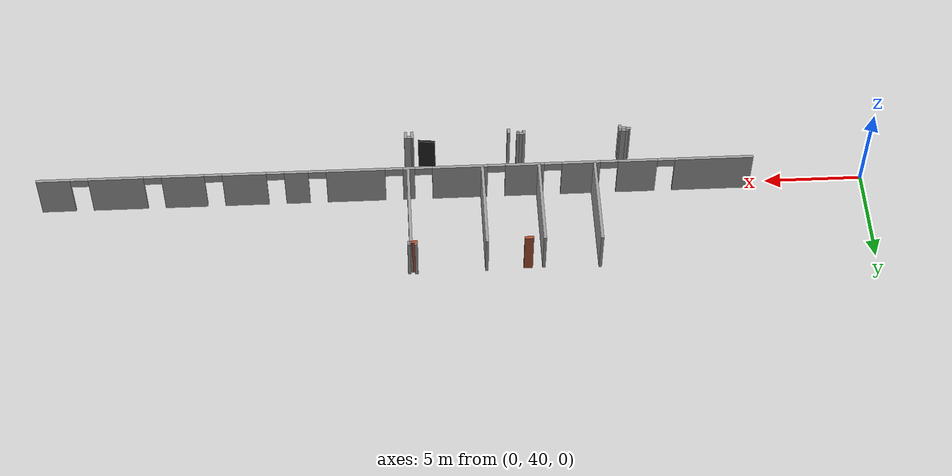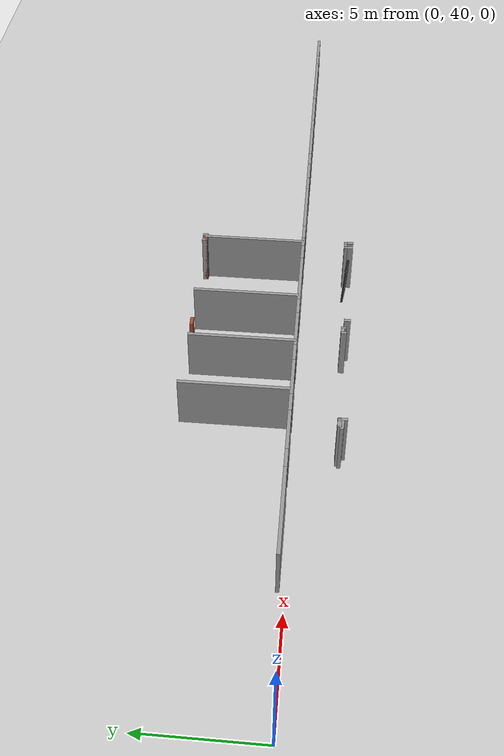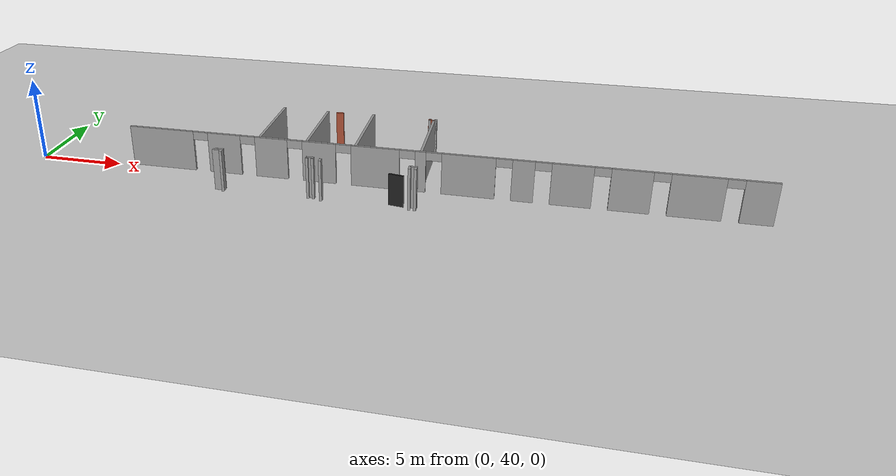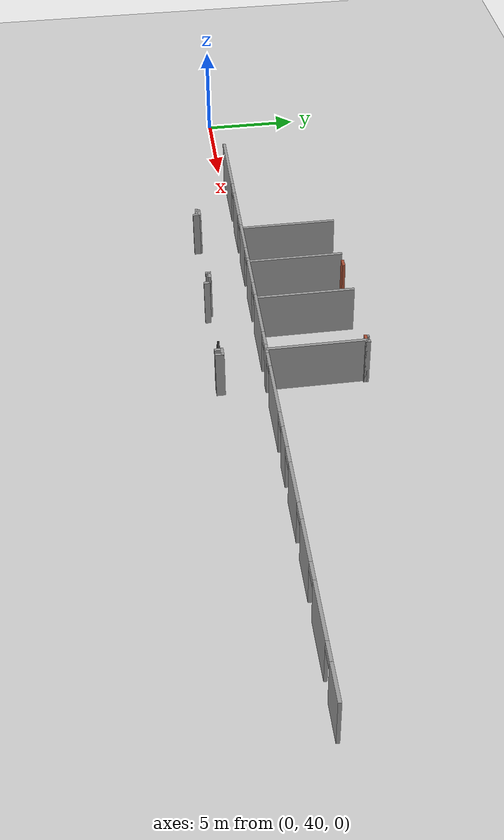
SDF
<sdf version="1.6">
 <world name="default">
  <model name="ground_plane">
   <static>1</static>
   <link name="link">
    <collision name="collision">
     <geometry><plane><normal>0 0 1</normal><size>100 100</size></plane></geometry>
     <surface><friction><ode><mu>100</mu><mu2>50</mu2></ode></friction></surface>
    </collision>
    <visual name="visual">
     <cast_shadows>0</cast_shadows>
     <geometry><plane><normal>0 0 1</normal><size>100 100</size></plane></geometry>
     <material>
      <script><uri>file://media/materials/scripts/gazebo.material</uri><name>Gazebo/Grey</name></script>
     </material>
    </visual>
   </link>
  </model>
  <model name="CVSSP">
   <pose>23.8714 24.094 0 0 -0 0</pose>
   <link name="Wall_311">
    <collision name="Wall_311_Collision">
     <geometry><box><size>4.75 0.15 2.5</size></box></geometry>
     <pose>0 0 1.25 0 -0 0</pose>
    </collision>
    <visual name="Wall_311_Visual">
     <pose>0 0 1.25 0 -0 0</pose>
     <geometry><box><size>4.75 0.15 2.5</size></box></geometry>
     <material>
      <script><uri>file://media/materials/scripts/gazebo.material</uri><name>Gazebo/Grey</name></script>
      <ambient>0.588235 0.588235 0.588235 1</ambient>
     </material>
    </visual>
    <pose>-9.85033 18.612 0 0 0 -1.5708</pose>
   </link>
   <link name="Wall_315">
    <collision name="Wall_315_Collision">
     <geometry><box><size>4.75 0.15 2.5</size></box></geometry>
     <pose>0 0 1.25 0 -0 0</pose>
    </collision>
    <visual name="Wall_315_Visual">
     <pose>0 0 1.25 0 -0 0</pose>
     <geometry><box><size>4.75 0.15 2.5</size></box></geometry>
     <material>
      <script><uri>file://media/materials/scripts/gazebo.material</uri><name>Gazebo/Grey</name></script>
      <ambient>0.588235 0.588235 0.588235 1</ambient>
     </material>
    </visual>
    <pose>-7.00685 18.5251 0 0 -0 1.5708</pose>
   </link>
   <link name="Wall_318">
    <collision name="Wall_318_Collision">
     <geometry><box><size>4.79 0.15 2.5</size></box></geometry>
     <pose>0 0 1.25 0 -0 0</pose>
    </collision>
    <visual name="Wall_318_Visual">
     <pose>0 0 1.25 0 -0 0</pose>
     <geometry><box><size>4.79 0.15 2.5</size></box></geometry>
     <material>
      <script><uri>file://media/materials/scripts/gazebo.material</uri><name>Gazebo/Grey</name></script>
      <ambient>1 1 1 1</ambient>
     </material>
    </visual>
    <pose>-4.1133 18.5854 0 0 0 -1.5708</pose>
   </link>
   <link name="Wall_320">
    <collision name="Wall_320_Collision">
     <geometry><box><size>4.75 0.15 2.5</size></box></geometry>
     <pose>0 0 1.25 0 -0 0</pose>
    </collision>
    <visual name="Wall_320_Visual">
     <pose>0 0 1.25 0 -0 0</pose>
     <geometry><box><size>4.75 0.15 2.5</size></box></geometry>
     <material>
      <script><uri>file://media/materials/scripts/gazebo.material</uri><name>Gazebo/Grey</name></script>
      <ambient>0.588235 0.588235 0.588235 1</ambient>
     </material>
    </visual>
    <pose>-0.323303 18.5354 0 0 -0 1.5708</pose>
   </link>
   <link name="Wall_326">
    <collision name="Wall_326_Collision">
     <geometry><box><size>0.41 0.15 2.5</size></box></geometry>
     <pose>0 0 1.25 0 -0 0</pose>
    </collision>
    <visual name="Wall_326_Visual">
     <pose>0 0 1.25 0 -0 0</pose>
     <geometry><box><size>0.41 0.15 2.5</size></box></geometry>
     <material>
      <script><uri>file://media/materials/scripts/gazebo.material</uri><name>Gazebo/Bricks</name></script>
      <ambient>1 1 1 1</ambient>
     </material>
    </visual>
    <pose>-0.453303 20.8354 0 0 -0 3.14159</pose>
   </link>
   <link name="Wall_327">
    <collision name="Wall_327_Collision">
     <geometry><box><size>0.25 0.15 2.5</size></box></geometry>
     <pose>0 0 1.25 0 -0 0</pose>
    </collision>
    <visual name="Wall_327_Visual">
     <pose>0 0 1.25 0 -0 0</pose>
     <geometry><box><size>0.25 0.15 2.5</size></box></geometry>
     <material>
      <script><uri>file://media/materials/scripts/gazebo.material</uri><name>Gazebo/Grey</name></script>
      <ambient>1 1 1 1</ambient>
     </material>
    </visual>
    <pose>-0.583303 20.8854 0 0 -0 1.5708</pose>
   </link>
   <link name="Wall_329">
    <collision name="Wall_329_Collision">
     <geometry><box><size>0.25 0.15 2.5</size></box></geometry>
     <pose>0 0 1.25 0 -0 0</pose>
    </collision>
    <visual name="Wall_329_Visual">
     <pose>0 0 1.25 0 -0 0</pose>
     <geometry><box><size>0.25 0.15 2.5</size></box></geometry>
     <material>
      <script><uri>file://media/materials/scripts/gazebo.material</uri><name>Gazebo/Grey</name></script>
      <ambient>1 1 1 1</ambient>
     </material>
    </visual>
    <pose>-0.273303 20.8354 0 0 -0 0</pose>
   </link>
   <link name="Wall_330">
    <collision name="Wall_330_Collision">
     <geometry><box><size>0.25 0.15 2.5</size></box></geometry>
     <pose>0 0 1.25 0 -0 0</pose>
    </collision>
    <visual name="Wall_330_Visual">
     <pose>0 0 1.25 0 -0 0</pose>
     <geometry><box><size>0.25 0.15 2.5</size></box></geometry>
     <material>
      <script><uri>file://media/materials/scripts/gazebo.material</uri><name>Gazebo/Grey</name></script>
      <ambient>1 1 1 1</ambient>
     </material>
    </visual>
    <pose>-0.223303 20.8854 0 0 -0 1.5708</pose>
   </link>
   <link name="Wall_619">
    <collision name="Wall_619_Collision">
     <geometry><box><size>0.491176 0.15 2.5</size></box></geometry>
     <pose>0 0 1.25 0 -0 0</pose>
    </collision>
    <visual name="Wall_619_Visual">
     <pose>0 0 1.25 0 -0 0</pose>
     <geometry><box><size>0.491176 0.15 2.5</size></box></geometry>
     <material>
      <script><uri>file://media/materials/scripts/gazebo.material</uri><name>Gazebo/Grey</name></script>
      <ambient>1 1 1 1</ambient>
     </material>
    </visual>
    <pose>-0.431731 14.1578 0 0 -0 0</pose>
   </link>
   <link name="Wall_620">
    <collision name="Wall_620_Collision">
     <geometry><box><size>0.421785 0.15 2.5</size></box></geometry>
     <pose>0 0 1.25 0 -0 0</pose>
    </collision>
    <visual name="Wall_620_Visual">
     <pose>0 0 1.25 0 -0 0</pose>
     <geometry><box><size>0.421785 0.15 2.5</size></box></geometry>
     <material>
      <script><uri>file://media/materials/scripts/gazebo.material</uri><name>Gazebo/Grey</name></script>
      <ambient>1 1 1 1</ambient>
     </material>
    </visual>
    <pose>-0.261143 14.0219 0 0 0 -1.5708</pose>
   </link>
   <link name="Wall_622">
    <collision name="Wall_622_Collision">
     <geometry><box><size>0.421846 0.15 2.5</size></box></geometry>
     <pose>0 0 1.25 0 -0 0</pose>
    </collision>
    <visual name="Wall_622_Visual">
     <pose>0 0 1.25 0 -0 0</pose>
     <geometry><box><size>0.421846 0.15 2.5</size></box></geometry>
     <material>
      <script><uri>file://media/materials/scripts/gazebo.material</uri><name>Gazebo/Grey</name></script>
      <ambient>1 1 1 1</ambient>
     </material>
    </visual>
    <pose>-0.593646 14.0219 0 0 -0 1.59207</pose>
   </link>
   <link name="Wall_624">
    <collision name="Wall_624_Collision">
     <geometry><box><size>0.291595 0.15 2.5</size></box></geometry>
     <pose>0 0 1.25 0 -0 0</pose>
    </collision>
    <visual name="Wall_624_Visual">
     <pose>0 0 1.25 0 -0 0</pose>
     <geometry><box><size>0.291595 0.15 2.5</size></box></geometry>
     <material>
      <script><uri>file://media/materials/scripts/gazebo.material</uri><name>Gazebo/Grey</name></script>
      <ambient>1 1 1 1</ambient>
     </material>
    </visual>
    <pose>-5.57863 13.9687 0 0 0 -1.5708</pose>
   </link>
   <link name="Wall_628">
    <collision name="Wall_628_Collision">
     <geometry><box><size>0.251643 0.15 2.5</size></box></geometry>
     <pose>0 0 1.25 0 -0 0</pose>
    </collision>
    <visual name="Wall_628_Visual">
     <pose>0 0 1.25 0 -0 0</pose>
     <geometry><box><size>0.251643 0.15 2.5</size></box></geometry>
     <material>
      <script><uri>file://media/materials/scripts/gazebo.material</uri><name>Gazebo/Grey</name></script>
      <ambient>1 1 1 1</ambient>
     </material>
    </visual>
    <pose>-6.3574 14.1103 0 0 -0 1.5708</pose>
   </link>
   <link name="Wall_629">
    <collision name="Wall_629_Collision">
     <geometry><box><size>0.453417 0.15 2.5</size></box></geometry>
     <pose>0 0 1.25 0 -0 0</pose>
    </collision>
    <visual name="Wall_629_Visual">
     <pose>0 0 1.25 0 -0 0</pose>
     <geometry><box><size>0.453417 0.15 2.5</size></box></geometry>
     <material>
      <script><uri>file://media/materials/scripts/gazebo.material</uri><name>Gazebo/Grey</name></script>
      <ambient>1 1 1 1</ambient>
     </material>
    </visual>
    <pose>-6.20569 14.1608 0 0 -0 0</pose>
   </link>
   <link name="Wall_630">
    <collision name="Wall_630_Collision">
     <geometry><box><size>0.220797 0.15 2.5</size></box></geometry>
     <pose>0 0 1.25 0 -0 0</pose>
    </collision>
    <visual name="Wall_630_Visual">
     <pose>0 0 1.25 0 -0 0</pose>
     <geometry><box><size>0.220797 0.15 2.5</size></box></geometry>
     <material>
      <script><uri>file://media/materials/scripts/gazebo.material</uri><name>Gazebo/Grey</name></script>
      <ambient>1 1 1 1</ambient>
     </material>
    </visual>
    <pose>-6.05398 14.1255 0 0 0 -1.5708</pose>
   </link>
   <link name="Wall_632">
    <collision name="Wall_632_Collision">
     <geometry><box><size>0.220797 0.15 2.5</size></box></geometry>
     <pose>0 0 1.25 0 -0 0</pose>
    </collision>
    <visual name="Wall_632_Visual">
     <pose>0 0 1.25 0 -0 0</pose>
     <geometry><box><size>0.220797 0.15 2.5</size></box></geometry>
     <material>
      <script><uri>file://media/materials/scripts/gazebo.material</uri><name>Gazebo/Grey</name></script>
      <ambient>1 1 1 1</ambient>
     </material>
    </visual>
    <pose>-11.6975 14.1255 0 0 -0 1.5708</pose>
   </link>
   <link name="Wall_633">
    <collision name="Wall_633_Collision">
     <geometry><box><size>0.494021 0.15 2.5</size></box></geometry>
     <pose>0 0 1.25 0 -0 0</pose>
    </collision>
    <visual name="Wall_633_Visual">
     <pose>0 0 1.25 0 -0 0</pose>
     <geometry><box><size>0.494021 0.15 2.5</size></box></geometry>
     <material>
      <script><uri>file://media/materials/scripts/gazebo.material</uri><name>Gazebo/Grey</name></script>
      <ambient>1 1 1 1</ambient>
     </material>
    </visual>
    <pose>-11.5256 14.1608 0 0 -0 0</pose>
   </link>
   <link name="Wall_634">
    <collision name="Wall_634_Collision">
     <geometry><box><size>0.413156 0.15 2.5</size></box></geometry>
     <pose>0 0 1.25 0 -0 0</pose>
    </collision>
    <visual name="Wall_634_Visual">
     <pose>0 0 1.25 0 -0 0</pose>
     <geometry><box><size>0.413156 0.15 2.5</size></box></geometry>
     <material>
      <script><uri>file://media/materials/scripts/gazebo.material</uri><name>Gazebo/Grey</name></script>
      <ambient>1 1 1 1</ambient>
     </material>
    </visual>
    <pose>-11.3486 14.0294 0 0 0 -1.53235</pose>
   </link>
   <link name="Wall_663">
    <collision name="Wall_663_Collision">
     <geometry><box><size>0.456076 0.15 2.5</size></box></geometry>
     <pose>0 0 1.25 0 -0 0</pose>
    </collision>
    <visual name="Wall_663_Visual">
     <pose>0 0 1.25 0 -0 0</pose>
     <geometry><box><size>0.456076 0.15 2.5</size></box></geometry>
     <material>
      <script><uri>file://media/materials/scripts/gazebo.material</uri><name>Gazebo/Bricks</name></script>
      <ambient>1 1 1 1</ambient>
     </material>
    </visual>
    <pose>-6.21292 20.8145 0 0 -0 0</pose>
   </link>
   <link name="Wall_70">
    <pose>0.280393 16.1874 0 0 -0 3.14159</pose>
    <visual name="Wall_70_Visual_0">
     <pose>-17.3872 0 1.25 0 -0 0</pose>
     <geometry><box><size>1.72569 0.15 2.5</size></box></geometry>
     <material>
      <script><uri>file://media/materials/scripts/gazebo.material</uri><name>Gazebo/Grey</name></script>
      <ambient>0.588235 0.588235 0.588235 1</ambient>
     </material>
    </visual>
    <collision name="Wall_70_Collision_0">
     <geometry><box><size>1.72569 0.15 2.5</size></box></geometry>
     <pose>-17.3872 0 1.25 0 -0 0</pose>
    </collision>
    <visual name="Wall_70_Visual_1">
     <pose>-14.2239 0 1.25 0 -0 0</pose>
     <geometry><box><size>2.8009 0.15 2.5</size></box></geometry>
     <material>
      <script><uri>file://media/materials/scripts/gazebo.material</uri><name>Gazebo/Grey</name></script>
      <ambient>0.588235 0.588235 0.588235 1</ambient>
     </material>
    </visual>
    <collision name="Wall_70_Collision_1">
     <geometry><box><size>2.8009 0.15 2.5</size></box></geometry>
     <pose>-14.2239 0 1.25 0 -0 0</pose>
    </collision>
    <visual name="Wall_70_Visual_2">
     <pose>-10.8352 0 1.25 0 -0 0</pose>
     <geometry><box><size>2.17637 0.15 2.5</size></box></geometry>
     <material>
      <script><uri>file://media/materials/scripts/gazebo.material</uri><name>Gazebo/Grey</name></script>
      <ambient>0.588235 0.588235 0.588235 1</ambient>
     </material>
    </visual>
    <collision name="Wall_70_Collision_2">
     <geometry><box><size>2.17637 0.15 2.5</size></box></geometry>
     <pose>-10.8352 0 1.25 0 -0 0</pose>
    </collision>
    <visual name="Wall_70_Visual_3">
     <pose>-7.72416 0 1.25 0 -0 0</pose>
     <geometry><box><size>2.24576 0.15 2.5</size></box></geometry>
     <material>
      <script><uri>file://media/materials/scripts/gazebo.material</uri><name>Gazebo/Grey</name></script>
      <ambient>0.588235 0.588235 0.588235 1</ambient>
     </material>
    </visual>
    <collision name="Wall_70_Collision_3">
     <geometry><box><size>2.24576 0.15 2.5</size></box></geometry>
     <pose>-7.72416 0 1.25 0 -0 0</pose>
    </collision>
    <visual name="Wall_70_Visual_4">
     <pose>-5.08727 0 1.25 0 -0 0</pose>
     <geometry><box><size>1.22802 0.15 2.5</size></box></geometry>
     <material>
      <script><uri>file://media/materials/scripts/gazebo.material</uri><name>Gazebo/Grey</name></script>
      <ambient>0.588235 0.588235 0.588235 1</ambient>
     </material>
    </visual>
    <collision name="Wall_70_Collision_4">
     <geometry><box><size>1.22802 0.15 2.5</size></box></geometry>
     <pose>-5.08727 0 1.25 0 -0 0</pose>
    </collision>
    <visual name="Wall_70_Visual_5">
     <pose>-2.06873 0 1.25 0 -0 0</pose>
     <geometry><box><size>3.00907 0.15 2.5</size></box></geometry>
     <material>
      <script><uri>file://media/materials/scripts/gazebo.material</uri><name>Gazebo/Grey</name></script>
      <ambient>0.588235 0.588235 0.588235 1</ambient>
     </material>
    </visual>
    <collision name="Wall_70_Collision_5">
     <geometry><box><size>3.00907 0.15 2.5</size></box></geometry>
     <pose>-2.06873 0 1.25 0 -0 0</pose>
    </collision>
    <visual name="Wall_70_Visual_6">
     <pose>0.637556 0 1.25 0 -0 0</pose>
     <geometry><box><size>0.60349 0.15 2.5</size></box></geometry>
     <material>
      <script><uri>file://media/materials/scripts/gazebo.material</uri><name>Gazebo/Grey</name></script>
      <ambient>0.588235 0.588235 0.588235 1</ambient>
     </material>
    </visual>
    <collision name="Wall_70_Collision_6">
     <geometry><box><size>0.60349 0.15 2.5</size></box></geometry>
     <pose>0.637556 0 1.25 0 -0 0</pose>
    </collision>
    <visual name="Wall_70_Visual_7">
     <pose>3.25131 0 1.25 0 -0 0</pose>
     <geometry><box><size>2.82403 0.15 2.5</size></box></geometry>
     <material>
      <script><uri>file://media/materials/scripts/gazebo.material</uri><name>Gazebo/Grey</name></script>
      <ambient>0.588235 0.588235 0.588235 1</ambient>
     </material>
    </visual>
    <collision name="Wall_70_Collision_7">
     <geometry><box><size>2.82403 0.15 2.5</size></box></geometry>
     <pose>3.25131 0 1.25 0 -0 0</pose>
    </collision>
    <visual name="Wall_70_Visual_8">
     <pose>6.55899 0 1.25 0 -0 0</pose>
     <geometry><box><size>1.99133 0.15 2.5</size></box></geometry>
     <material>
      <script><uri>file://media/materials/scripts/gazebo.material</uri><name>Gazebo/Grey</name></script>
      <ambient>0.588235 0.588235 0.588235 1</ambient>
     </material>
    </visual>
    <collision name="Wall_70_Collision_8">
     <geometry><box><size>1.99133 0.15 2.5</size></box></geometry>
     <pose>6.55899 0 1.25 0 -0 0</pose>
    </collision>
    <visual name="Wall_70_Visual_9">
     <pose>9.43875 0 1.25 0 -0 0</pose>
     <geometry><box><size>1.9682 0.15 2.5</size></box></geometry>
     <material>
      <script><uri>file://media/materials/scripts/gazebo.material</uri><name>Gazebo/Grey</name></script>
      <ambient>0.588235 0.588235 0.588235 1</ambient>
     </material>
    </visual>
    <collision name="Wall_70_Collision_9">
     <geometry><box><size>1.9682 0.15 2.5</size></box></geometry>
     <pose>9.43875 0 1.25 0 -0 0</pose>
    </collision>
    <visual name="Wall_70_Visual_10">
     <pose>12.3301 0 1.25 0 -0 0</pose>
     <geometry><box><size>2.01446 0.15 2.5</size></box></geometry>
     <material>
      <script><uri>file://media/materials/scripts/gazebo.material</uri><name>Gazebo/Grey</name></script>
      <ambient>0.588235 0.588235 0.588235 1</ambient>
     </material>
    </visual>
    <collision name="Wall_70_Collision_10">
     <geometry><box><size>2.01446 0.15 2.5</size></box></geometry>
     <pose>12.3301 0 1.25 0 -0 0</pose>
    </collision>
    <visual name="Wall_70_Visual_11">
     <pose>16.2437 0 1.25 0 -0 0</pose>
     <geometry><box><size>4.01269 0.15 2.5</size></box></geometry>
     <material>
      <script><uri>file://media/materials/scripts/gazebo.material</uri><name>Gazebo/Grey</name></script>
      <ambient>0.588235 0.588235 0.588235 1</ambient>
     </material>
    </visual>
    <collision name="Wall_70_Collision_11">
     <geometry><box><size>4.01269 0.15 2.5</size></box></geometry>
     <pose>16.2437 0 1.25 0 -0 0</pose>
    </collision>
    <visual name="Wall_70_Visual_12">
     <pose>-16.0743 0 2.25 0 -0 0</pose>
     <geometry><box><size>0.9 0.15 0.5</size></box></geometry>
     <material>
      <script><uri>file://media/materials/scripts/gazebo.material</uri><name>Gazebo/Grey</name></script>
      <ambient>0.588235 0.588235 0.588235 1</ambient>
     </material>
    </visual>
    <collision name="Wall_70_Collision_12">
     <geometry><box><size>0.9 0.15 0.5</size></box></geometry>
     <pose>-16.0743 0 2.25 0 -0 0</pose>
    </collision>
    <visual name="Wall_70_Visual_13">
     <pose>-12.3734 0 2.25 0 -0 0</pose>
     <geometry><box><size>0.9 0.15 0.5</size></box></geometry>
     <material>
      <script><uri>file://media/materials/scripts/gazebo.material</uri><name>Gazebo/Grey</name></script>
      <ambient>0.588235 0.588235 0.588235 1</ambient>
     </material>
    </visual>
    <collision name="Wall_70_Collision_13">
     <geometry><box><size>0.9 0.15 0.5</size></box></geometry>
     <pose>-12.3734 0 2.25 0 -0 0</pose>
    </collision>
    <visual name="Wall_70_Visual_14">
     <pose>-9.29704 0 2.25 0 -0 0</pose>
     <geometry><box><size>0.9 0.15 0.5</size></box></geometry>
     <material>
      <script><uri>file://media/materials/scripts/gazebo.material</uri><name>Gazebo/Grey</name></script>
      <ambient>0.588235 0.588235 0.588235 1</ambient>
     </material>
    </visual>
    <collision name="Wall_70_Collision_14">
     <geometry><box><size>0.9 0.15 0.5</size></box></geometry>
     <pose>-9.29704 0 2.25 0 -0 0</pose>
    </collision>
    <visual name="Wall_70_Visual_15">
     <pose>-6.15128 0 2.25 0 -0 0</pose>
     <geometry><box><size>0.9 0.15 0.5</size></box></geometry>
     <material>
      <script><uri>file://media/materials/scripts/gazebo.material</uri><name>Gazebo/Grey</name></script>
      <ambient>0.588235 0.588235 0.588235 1</ambient>
     </material>
    </visual>
    <collision name="Wall_70_Collision_15">
     <geometry><box><size>0.9 0.15 0.5</size></box></geometry>
     <pose>-6.15128 0 2.25 0 -0 0</pose>
    </collision>
    <visual name="Wall_70_Visual_16">
     <pose>-4.02326 0 2.25 0 -0 0</pose>
     <geometry><box><size>0.9 0.15 0.5</size></box></geometry>
     <material>
      <script><uri>file://media/materials/scripts/gazebo.material</uri><name>Gazebo/Grey</name></script>
      <ambient>0.588235 0.588235 0.588235 1</ambient>
     </material>
    </visual>
    <collision name="Wall_70_Collision_16">
     <geometry><box><size>0.9 0.15 0.5</size></box></geometry>
     <pose>-4.02326 0 2.25 0 -0 0</pose>
    </collision>
    <visual name="Wall_70_Visual_17">
     <pose>-0.114189 0 2.25 0 -0 0</pose>
     <geometry><box><size>0.9 0.15 0.5</size></box></geometry>
     <material>
      <script><uri>file://media/materials/scripts/gazebo.material</uri><name>Gazebo/Grey</name></script>
      <ambient>0.588235 0.588235 0.588235 1</ambient>
     </material>
    </visual>
    <collision name="Wall_70_Collision_17">
     <geometry><box><size>0.9 0.15 0.5</size></box></geometry>
     <pose>-0.114189 0 2.25 0 -0 0</pose>
    </collision>
    <visual name="Wall_70_Visual_18">
     <pose>1.3893 0 2.25 0 -0 0</pose>
     <geometry><box><size>0.9 0.15 0.5</size></box></geometry>
     <material>
      <script><uri>file://media/materials/scripts/gazebo.material</uri><name>Gazebo/Grey</name></script>
      <ambient>0.588235 0.588235 0.588235 1</ambient>
     </material>
    </visual>
    <collision name="Wall_70_Collision_18">
     <geometry><box><size>0.9 0.15 0.5</size></box></geometry>
     <pose>1.3893 0 2.25 0 -0 0</pose>
    </collision>
    <visual name="Wall_70_Visual_19">
     <pose>5.11333 0 2.25 0 -0 0</pose>
     <geometry><box><size>0.9 0.15 0.5</size></box></geometry>
     <material>
      <script><uri>file://media/materials/scripts/gazebo.material</uri><name>Gazebo/Grey</name></script>
      <ambient>0.588235 0.588235 0.588235 1</ambient>
     </material>
    </visual>
    <collision name="Wall_70_Collision_19">
     <geometry><box><size>0.9 0.15 0.5</size></box></geometry>
     <pose>5.11333 0 2.25 0 -0 0</pose>
    </collision>
    <visual name="Wall_70_Visual_20">
     <pose>8.00465 0 2.25 0 -0 0</pose>
     <geometry><box><size>0.9 0.15 0.5</size></box></geometry>
     <material>
      <script><uri>file://media/materials/scripts/gazebo.material</uri><name>Gazebo/Grey</name></script>
      <ambient>0.588235 0.588235 0.588235 1</ambient>
     </material>
    </visual>
    <collision name="Wall_70_Collision_20">
     <geometry><box><size>0.9 0.15 0.5</size></box></geometry>
     <pose>8.00465 0 2.25 0 -0 0</pose>
    </collision>
    <visual name="Wall_70_Visual_21">
     <pose>10.8728 0 2.25 0 -0 0</pose>
     <geometry><box><size>0.9 0.15 0.5</size></box></geometry>
     <material>
      <script><uri>file://media/materials/scripts/gazebo.material</uri><name>Gazebo/Grey</name></script>
      <ambient>0.588235 0.588235 0.588235 1</ambient>
     </material>
    </visual>
    <collision name="Wall_70_Collision_21">
     <geometry><box><size>0.9 0.15 0.5</size></box></geometry>
     <pose>10.8728 0 2.25 0 -0 0</pose>
    </collision>
    <visual name="Wall_70_Visual_22">
     <pose>13.7873 0 2.25 0 -0 0</pose>
     <geometry><box><size>0.9 0.15 0.5</size></box></geometry>
     <material>
      <script><uri>file://media/materials/scripts/gazebo.material</uri><name>Gazebo/Grey</name></script>
      <ambient>0.588235 0.588235 0.588235 1</ambient>
     </material>
    </visual>
    <collision name="Wall_70_Collision_22">
     <geometry><box><size>0.9 0.15 0.5</size></box></geometry>
     <pose>13.7873 0 2.25 0 -0 0</pose>
    </collision>
   </link>
   <link name="Wall_76">
    <collision name="Wall_76_Collision">
     <geometry><box><size>0.466115 0.15 2.5</size></box></geometry>
     <pose>0 0 1.25 0 -0 0</pose>
    </collision>
    <visual name="Wall_76_Visual">
     <pose>0 0 1.25 0 -0 0</pose>
     <geometry><box><size>0.466115 0.15 2.5</size></box></geometry>
     <material>
      <script><uri>file://media/materials/scripts/gazebo.material</uri><name>Gazebo/Grey</name></script>
      <ambient>1 1 1 1</ambient>
     </material>
    </visual>
    <pose>-11.6451 14.045 0 0 0 -0.063136</pose>
   </link>
   <static>1</static>
  </model>
  <model name="metal_door_clone">
   <link name="link">
    <inertial>
     <mass>1</mass>
     <inertia>
      <ixx>0.166667</ixx>
      <ixy>0</ixy>
      <ixz>0</ixz>
      <iyy>0.166667</iyy>
      <iyz>0</iyz>
      <izz>0.166667</izz>
     </inertia>
    </inertial>
    <gravity>0</gravity>
    <visual name="visual">
     <geometry><box><size>0.100297 0.870347 1.94787</size></box></geometry>
     <material>
      <script><name>Gazebo/Black</name><uri>file://media/materials/scripts/gazebo.material</uri></script>
      <shader type="pixel"><normal_map>__default__</normal_map></shader>
      <ambient>0.01 0.001 0.001 1</ambient>
      <diffuse>0.7 0.7 0.7 1</diffuse>
      <specular>0.01 0.01 0.01 1</specular>
      <emissive>0 0 0 1</emissive>
     </material>
    </visual>
    <collision name="collision">
     <geometry><box><size>0.100297 0.870347 1.94787</size></box></geometry>
     <surface>
      <friction>
       <ode><mu>1</mu><mu2>1</mu2><fdir1>0 0 0</fdir1><slip1>0</slip1><slip2>0</slip2></ode>
       <torsional>
        <coefficient>1</coefficient>
        <patch_radius>0</patch_radius>
        <surface_radius>0</surface_radius>
        <use_patch_radius>1</use_patch_radius>
        <ode><slip>0</slip></ode>
       </torsional>
      </friction>
      <bounce><restitution_coefficient>0</restitution_coefficient><threshold>1e+06</threshold></bounce>
      <contact>
       <collide_without_contact>0</collide_without_contact>
       <collide_without_contact_bitmask>1</collide_without_contact_bitmask>
       <collide_bitmask>1</collide_bitmask>
       <ode>
        <soft_cfm>0</soft_cfm>
        <soft_erp>0.2</soft_erp>
        <kp>1e+13</kp>
        <kd>1</kd>
        <max_vel>0.01</max_vel>
        <min_depth>0</min_depth>
       </ode>
       <bullet>
        <split_impulse>1</split_impulse>
        <split_impulse_penetration_threshold>-0.01</split_impulse_penetration_threshold>
        <soft_cfm>0</soft_cfm>
        <soft_erp>0.2</soft_erp>
        <kp>1e+13</kp>
        <kd>1</kd>
       </bullet>
      </contact>
     </surface>
    </collision>
   </link>
   <static>0</static>
   <pose>22.5322 38.1898 0.999545 -0.017702 0.050906 -1.69787</pose>
  </model>
 </world>
</sdf>
